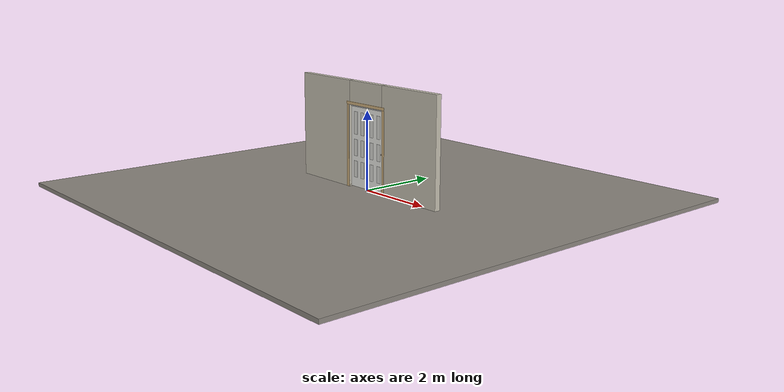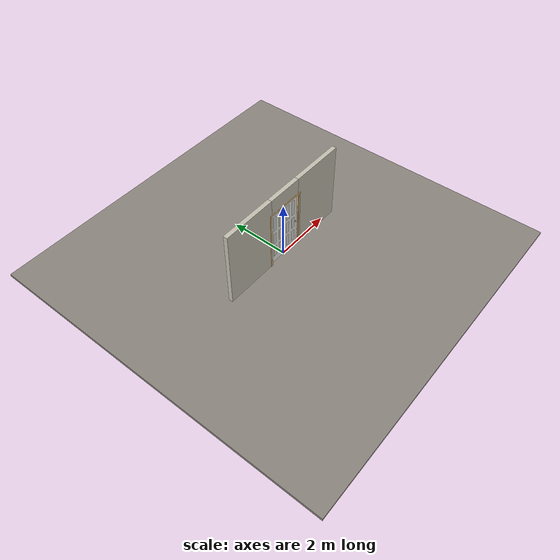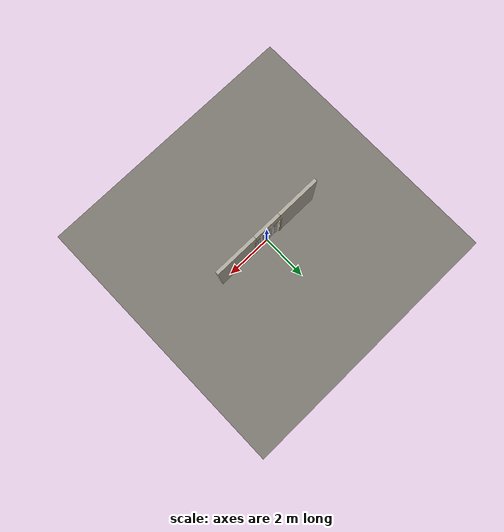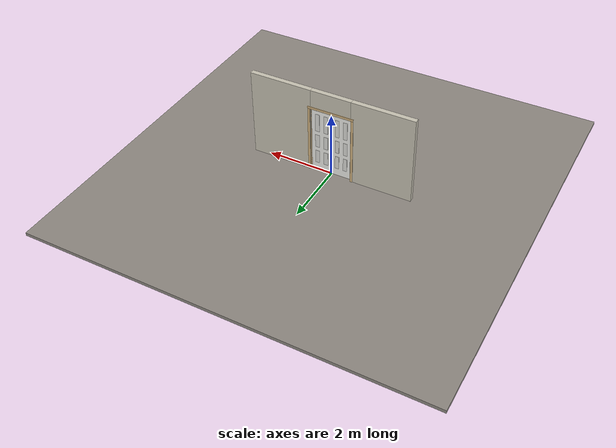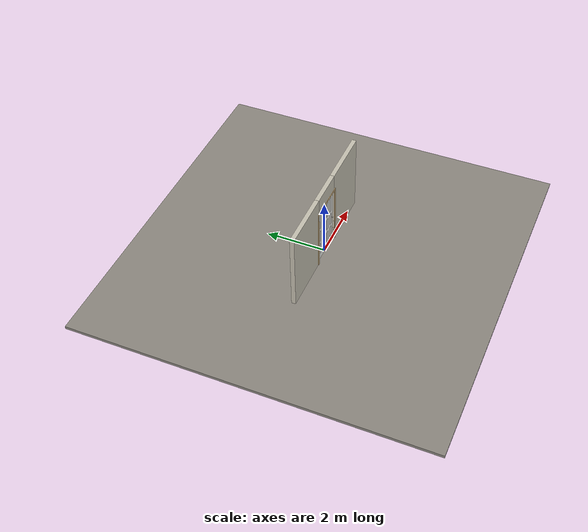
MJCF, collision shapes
<?xml version="1.0" ?>
<mujoco model="db0486_bifold_full">
  <compiler angle="radian" meshdir="../../hardware" texturedir="../../textures" autolimits="true" inertiafromgeom="false"/>
  <option timestep="0.002" integrator="implicitfast" cone="elliptic" impratio="10" noslip_iterations="3">
    <flag multiccd="enable"/>
  </option>
  <size memory="16M"/>
  <default>
    <geom condim="4" solref="0.005 1" solimp="0.95 0.99 0.001"/>
    <joint solreflimit="0.005 1" solimplimit="0.95 0.99 0.001"/>
    <tendon solreflimit="0.005 1"/>
    <equality solref="0.002 1"/>
  </default>
  <visual>
    <headlight ambient="0.4 0.4 0.4" diffuse="0.7 0.7 0.7" specular="0.2 0.2 0.2"/>
    <quality shadowsize="4096"/>
    <map znear="0.01" zfar="60"/>
  </visual>
  <asset>
    <mesh name="knob_13f7a2a65f" file="knob_13f7a2a65f.obj"/>
    <material name="mat_floor" rgba="0.55 0.53 0.5 1" specular="0.2" shininess="0.15" reflectance="0"/>
    <material name="mat_wall" rgba="0.78 0.76 0.7 1" specular="0.2" shininess="0.1" reflectance="0"/>
    <material name="mat_frame" rgba="0.82 0.7 0.5 1" specular="0.2" shininess="0.45" reflectance="0"/>
    <material name="mat_track" rgba="0.8 0.81 0.83 1" specular="0.8" shininess="0.6" reflectance="0.4"/>
    <material name="mat_hinge" rgba="0.65 0.66 0.68 1" specular="0.74" shininess="0.5" reflectance="0.36"/>
    <material name="mat_panel_0_0" rgba="0.93 0.93 0.91 1" specular="0.2" shininess="0.49" reflectance="0"/>
    <material name="mat_panel_0_0_panel" rgba="0.856 0.856 0.837 1" specular="0.2" shininess="0.49" reflectance="0"/>
    <material name="mat_panel_0_1" rgba="0.93 0.93 0.91 1" specular="0.2" shininess="0.49" reflectance="0"/>
    <material name="mat_panel_0_1_panel" rgba="0.856 0.856 0.837 1" specular="0.2" shininess="0.49" reflectance="0"/>
    <material name="mat_op_nickel_satin" rgba="0.72 0.7 0.66 1" specular="0.8" shininess="0.65" reflectance="0.4"/>
    <texture name="skybox" type="skybox" builtin="gradient" rgb1="0.6 0.7 0.85" rgb2="0.9 0.92 0.95" width="256" height="256"/>
  </asset>
  <worldbody>
    <light name="sun" pos="1.5 -2.5 4" dir="-0.3 0.5 -0.8" directional="true" diffuse="0.8 0.8 0.8" specular="0.3 0.3 0.3" castshadow="true"/>
    <light name="fill" pos="-1.5 2.5 3" dir="0.3 -0.5 -0.7" directional="true" diffuse="0.35 0.35 0.4" castshadow="false"/>
    <camera name="robot_view" pos="0 -2.581563 1.766338" xyaxes="1 0 0 0 0.26963 0.962964" fovy="52"/>
    <camera name="far_view" pos="0 2.581563 1.766338" xyaxes="-1 0 0 0 -0.26963 0.962964" fovy="52"/>
    <camera name="iso" pos="1.961988 -2.168513 2.179388" xyaxes="0.741536 0.670913 0 -0.242917 0.268487 0.932151" fovy="46"/>
    <camera name="detail_handle" pos="0.7415 -0.8475 1.28" xyaxes="0.97561 0.219512 0 -0.070934 0.315262 0.94635" fovy="38"/>
    <geom name="floor" type="box" size="6 6 0.05" pos="0 0 -0.05" material="mat_floor" group="0" contype="1" conaffinity="1" friction="0.8 0.005 0.0001" density="2400"/>
    <geom name="wall_left" type="box" size="0.94125 0.0725 1.35" pos="-1.55875 0 1.35" material="mat_wall" group="0" contype="1" conaffinity="1" friction="0.6 0.005 0.0001" density="800"/>
    <geom name="wall_right" type="box" size="0.94125 0.0725 1.35" pos="1.55875 0 1.35" material="mat_wall" group="0" contype="1" conaffinity="1" friction="0.6 0.005 0.0001" density="800"/>
    <geom name="wall_header" type="box" size="0.6175 0.0725 0.3065" pos="0 0 2.3935" material="mat_wall" group="0" contype="1" conaffinity="1" friction="0.6 0.005 0.0001" density="800"/>
    <geom name="jamb_hinge" type="box" size="0.0095 0.0725 1.0435" pos="-0.627 0 1.0435" material="mat_frame" group="0" contype="1" conaffinity="1" friction="0.6 0.005 0.0001" density="400"/>
    <geom name="jamb_strike" type="box" size="0.0095 0.0725 1.0435" pos="0.627 0 1.0435" material="mat_frame" group="0" contype="1" conaffinity="1" friction="0.6 0.005 0.0001" density="400"/>
    <geom name="stud_strike" type="box" size="0.015 0.0725 1.0435" pos="0.6515 0 1.0435" material="mat_wall" group="0" contype="1" conaffinity="1" friction="0.6 0.005 0.0001" density="500"/>
    <geom name="jamb_head" type="box" size="0.6515 0.0725 0.0095" pos="0.015 0 2.0965" material="mat_frame" group="0" contype="1" conaffinity="1" friction="0.6 0.005 0.0001" density="400"/>
    <geom name="head_stud" type="box" size="0.6515 0.0725 0.015" pos="0.015 0 2.121" material="mat_wall" group="0" contype="1" conaffinity="1" friction="0.6 0.005 0.0001" density="500"/>
    <geom name="casing_l_n" type="box" size="0.035 0.008 1.053" pos="-0.6665 -0.0805 1.0435" material="mat_frame" group="2" contype="0" conaffinity="0" density="400"/>
    <geom name="casing_r_n" type="box" size="0.035 0.008 1.053" pos="0.6665 -0.0805 1.0435" material="mat_frame" group="2" contype="0" conaffinity="0" density="400"/>
    <geom name="casing_h_n" type="box" size="0.7015 0.008 0.035" pos="0 -0.0805 2.136" material="mat_frame" group="2" contype="0" conaffinity="0" density="400"/>
    <geom name="casing_l_p" type="box" size="0.035 0.008 1.053" pos="-0.6665 0.0805 1.0435" material="mat_frame" group="2" contype="0" conaffinity="0" density="400"/>
    <geom name="casing_r_p" type="box" size="0.035 0.008 1.053" pos="0.6665 0.0805 1.0435" material="mat_frame" group="2" contype="0" conaffinity="0" density="400"/>
    <geom name="casing_h_p" type="box" size="0.7015 0.008 0.035" pos="0 0.0805 2.136" material="mat_frame" group="2" contype="0" conaffinity="0" density="400"/>
    <geom name="fold_track" type="box" size="0.6175 0.02 0.015" pos="0 0 2.072" material="mat_track" group="1" contype="0" conaffinity="0" density="2700"/>
    <site name="approach_point" pos="0 -1.5 0" quat="1 0 0 0" size="0.05" rgba="0.2 0.9 0.2 0.5" group="4"/>
    <site name="goal_point" pos="0 1.5 0" quat="1 0 0 0" size="0.05" rgba="0.2 0.9 0.2 0.5" group="4"/>
    <site name="door_plane_center" pos="0 0 1.0435" quat="1 0 0 0" size="0.02" rgba="0.2 0.9 0.2 0.5" group="4"/>
    <body name="panel_0_0" pos="-0.6175 0 0">
      <inertial pos="0.307344 0 1.039794" mass="8.87781" quat="0.499191 0.499191 -0.500808 0.500808" diaginertia="0.267990561 3.077823269 3.344004251"/>
      <joint name="panel_0_0_hinge" type="hinge" axis="0 0 -1" pos="0.035 0 0" limited="true" range="0 1.48353" damping="0.780838" frictionloss="8.399581" armature="0.02"/>
      <geom name="panel_0_0_slab" type="box" size="0.299645 0.0175 1.016" pos="0.308355 0 1.036" material="mat_panel_0_0" group="0" contype="1" conaffinity="1" friction="0.35 0.005 0.0001" density="1"/>
      <geom name="panel_0_0_panel_0_n" type="box" size="0.062323 0.003 0.209032" pos="0.181032 -0.0205 0.472552" material="mat_panel_0_0_panel" group="1" contype="0" conaffinity="0" density="1"/>
      <geom name="panel_0_0_panel_0_p" type="box" size="0.062323 0.003 0.209032" pos="0.181032 0.0205 0.472552" material="mat_panel_0_0_panel" group="1" contype="0" conaffinity="0" density="1"/>
      <geom name="panel_0_0_panel_1_n" type="box" size="0.062323 0.003 0.209032" pos="0.435677 -0.0205 0.472552" material="mat_panel_0_0_panel" group="1" contype="0" conaffinity="0" density="1"/>
      <geom name="panel_0_0_panel_1_p" type="box" size="0.062323 0.003 0.209032" pos="0.435677 0.0205 0.472552" material="mat_panel_0_0_panel" group="1" contype="0" conaffinity="0" density="1"/>
      <geom name="panel_0_0_panel_2_n" type="box" size="0.062323 0.003 0.209032" pos="0.181032 -0.0205 1.020616" material="mat_panel_0_0_panel" group="1" contype="0" conaffinity="0" density="1"/>
      <geom name="panel_0_0_panel_2_p" type="box" size="0.062323 0.003 0.209032" pos="0.181032 0.0205 1.020616" material="mat_panel_0_0_panel" group="1" contype="0" conaffinity="0" density="1"/>
      <geom name="panel_0_0_panel_3_n" type="box" size="0.062323 0.003 0.209032" pos="0.435677 -0.0205 1.020616" material="mat_panel_0_0_panel" group="1" contype="0" conaffinity="0" density="1"/>
      <geom name="panel_0_0_panel_3_p" type="box" size="0.062323 0.003 0.209032" pos="0.435677 0.0205 1.020616" material="mat_panel_0_0_panel" group="1" contype="0" conaffinity="0" density="1"/>
      <geom name="panel_0_0_panel_4_n" type="box" size="0.062323 0.003 0.285376" pos="0.181032 -0.0205 1.645024" material="mat_panel_0_0_panel" group="1" contype="0" conaffinity="0" density="1"/>
      <geom name="panel_0_0_panel_4_p" type="box" size="0.062323 0.003 0.285376" pos="0.181032 0.0205 1.645024" material="mat_panel_0_0_panel" group="1" contype="0" conaffinity="0" density="1"/>
      <geom name="panel_0_0_panel_5_n" type="box" size="0.062323 0.003 0.285376" pos="0.435677 -0.0205 1.645024" material="mat_panel_0_0_panel" group="1" contype="0" conaffinity="0" density="1"/>
      <geom name="panel_0_0_panel_5_p" type="box" size="0.062323 0.003 0.285376" pos="0.435677 0.0205 1.645024" material="mat_panel_0_0_panel" group="1" contype="0" conaffinity="0" density="1"/>
      <geom name="panel_0_0_pivot_pin" type="cylinder" size="0.008 0.0105" pos="0.035 0 2.0525" material="mat_hinge" group="1" contype="0" conaffinity="0" density="7850"/>
      <body name="panel_0_1" pos="0.61 0 0">
        <inertial pos="0.082284 0.010244 1.031868" mass="9.205988" quat="0.51955 0.475421 -0.523398 0.479685" diaginertia="0.353290918 2.726482593 3.079010105"/>
        <joint name="panel_0_1_hinge" type="hinge" axis="0 0 -1" pos="0 0.0175 0" limited="true" range="-3.141593 0" damping="0.2" frictionloss="0.1" armature="0.005"/>
        <geom name="panel_0_1_slab" type="box" size="0.3085 0.0175 1.016" pos="0.3105 0 1.036" material="mat_panel_0_1" group="0" contype="1" conaffinity="1" friction="0.35 0.005 0.0001" density="1"/>
        <geom name="panel_0_1_panel_0_n" type="box" size="0.06675 0.003 0.209032" pos="0.17875 -0.0205 0.472552" material="mat_panel_0_1_panel" group="1" contype="0" conaffinity="0" density="1"/>
        <geom name="panel_0_1_panel_0_p" type="box" size="0.06675 0.003 0.209032" pos="0.17875 0.0205 0.472552" material="mat_panel_0_1_panel" group="1" contype="0" conaffinity="0" density="1"/>
        <geom name="panel_0_1_panel_1_n" type="box" size="0.06675 0.003 0.209032" pos="0.44225 -0.0205 0.472552" material="mat_panel_0_1_panel" group="1" contype="0" conaffinity="0" density="1"/>
        <geom name="panel_0_1_panel_1_p" type="box" size="0.06675 0.003 0.209032" pos="0.44225 0.0205 0.472552" material="mat_panel_0_1_panel" group="1" contype="0" conaffinity="0" density="1"/>
        <geom name="panel_0_1_panel_2_n" type="box" size="0.06675 0.003 0.209032" pos="0.17875 -0.0205 1.020616" material="mat_panel_0_1_panel" group="1" contype="0" conaffinity="0" density="1"/>
        <geom name="panel_0_1_panel_2_p" type="box" size="0.06675 0.003 0.209032" pos="0.17875 0.0205 1.020616" material="mat_panel_0_1_panel" group="1" contype="0" conaffinity="0" density="1"/>
        <geom name="panel_0_1_panel_3_n" type="box" size="0.06675 0.003 0.209032" pos="0.44225 -0.0205 1.020616" material="mat_panel_0_1_panel" group="1" contype="0" conaffinity="0" density="1"/>
        <geom name="panel_0_1_panel_3_p" type="box" size="0.06675 0.003 0.209032" pos="0.44225 0.0205 1.020616" material="mat_panel_0_1_panel" group="1" contype="0" conaffinity="0" density="1"/>
        <geom name="panel_0_1_panel_4_n" type="box" size="0.06675 0.003 0.285376" pos="0.17875 -0.0205 1.645024" material="mat_panel_0_1_panel" group="1" contype="0" conaffinity="0" density="1"/>
        <geom name="panel_0_1_panel_4_p" type="box" size="0.06675 0.003 0.285376" pos="0.17875 0.0205 1.645024" material="mat_panel_0_1_panel" group="1" contype="0" conaffinity="0" density="1"/>
        <geom name="panel_0_1_panel_5_n" type="box" size="0.06675 0.003 0.285376" pos="0.44225 -0.0205 1.645024" material="mat_panel_0_1_panel" group="1" contype="0" conaffinity="0" density="1"/>
        <geom name="panel_0_1_panel_5_p" type="box" size="0.06675 0.003 0.285376" pos="0.44225 0.0205 1.645024" material="mat_panel_0_1_panel" group="1" contype="0" conaffinity="0" density="1"/>
        <geom name="panel_0_1_knuckle" type="cylinder" size="0.0045 1.006" pos="0 0.0175 1.036" material="mat_hinge" group="1" contype="0" conaffinity="0" density="7850"/>
        <geom name="panel_0_1_knob" type="mesh" mesh="knob_13f7a2a65f" pos="0.569 -0.0175 1" quat="0.707107 0.707107 0 0" material="mat_op_nickel_satin" group="1" contype="0" conaffinity="0" density="3000"/>
        <geom name="panel_0_1_knob_col" type="sphere" size="0.016" pos="0.569 -0.0475 1" material="mat_op_nickel_satin" group="0" contype="1" conaffinity="1" friction="0.6 0.005 0.0001" density="3000"/>
        <geom name="panel_0_1_knob_rose" type="cylinder" size="0.022 0.005" pos="0.569 -0.0225 1" quat="0.707107 -0.707107 0 0" material="mat_op_nickel_satin" group="1" contype="0" conaffinity="0" density="3000"/>
        <site name="panel_0_1_grip" pos="0.569 -0.0475 1" quat="1 0 0 0" size="0.012" rgba="0.2 0.9 0.2 0.5" group="4"/>
      </body>
    </body>
  </worldbody>
  <equality>
    <joint name="panel_0_1_couple" joint1="panel_0_1_hinge" joint2="panel_0_0_hinge" polycoef="0 -2 0 0 0" active="true"/>
  </equality>
  <sensor>
    <jointpos name="panel_0_0_hinge_pos" joint="panel_0_0_hinge"/>
    <jointvel name="panel_0_0_hinge_vel" joint="panel_0_0_hinge"/>
    <jointpos name="panel_0_1_hinge_pos" joint="panel_0_1_hinge"/>
    <jointvel name="panel_0_1_hinge_vel" joint="panel_0_1_hinge"/>
  </sensor>
</mujoco>
